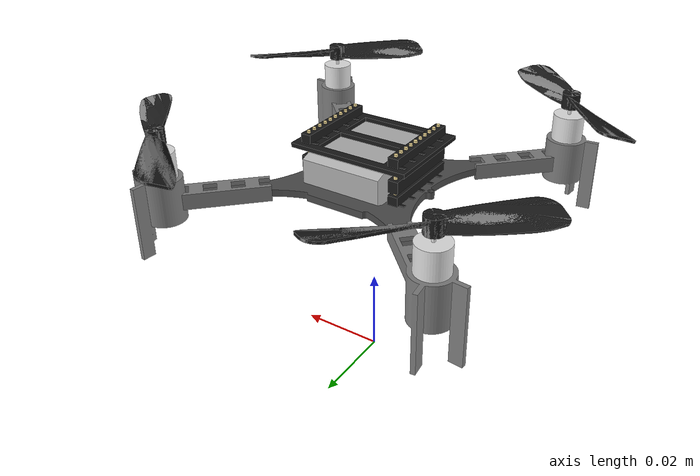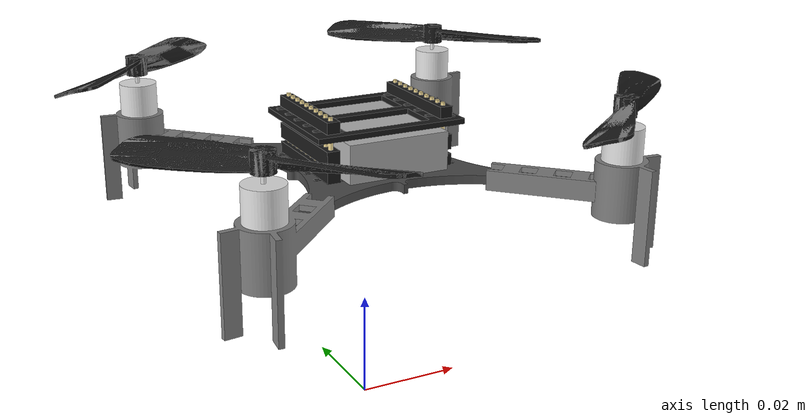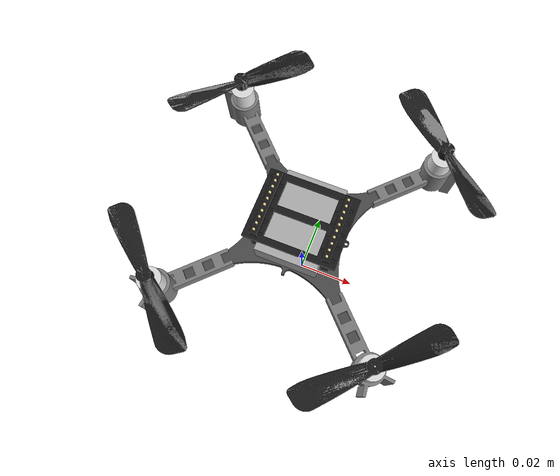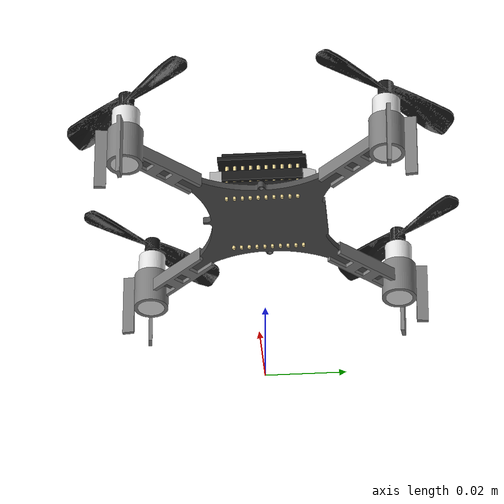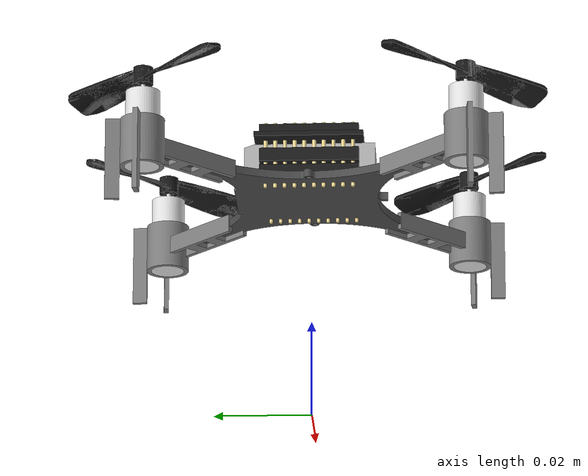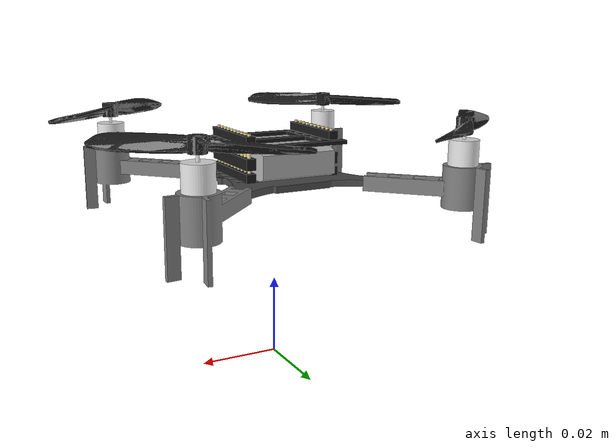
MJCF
<mujoco model="cf2x">
  <compiler inertiafromgeom="false" meshdir="assets" autolimits="true" />

  <asset>
    <material name="black" rgba="0.102 0.102 0.102 1"/>
    <material name="gray" rgba="0.3 0.3 0.3 1"/>
    <material name="light-gray" rgba="0.7 0.7 0.7 1"/>
    <material name="silver" rgba="0.898 0.898 0.898 1"/>
    <material name="white" rgba="1 1 1 0.3"/>
    <material name="gold" rgba="0.969 0.878 0.6 1"/>
    <!-- The LED materials are initially transparent and can be changed dynamically -->
    <material name="led_top" rgba="1.0 1.0 1.0 0.0"/>
    <material name="led_bot" rgba="1.0 1.0 1.0 0.0"/>

    <mesh name="pcb" file="cf2x/cf2x_pcb.stl" scale="0.001 0.001 0.001"/>
    <mesh name="motors" file="cf2x/cf2xL_motors.stl" scale="0.001 0.001 0.001"/>
    <mesh name="motor-holder" file="cf2x/cf2x_motor-holder.stl" scale="0.001 0.001 0.001"/>
    <mesh name="propL" file="cf2x/cf2xL_PropL.stl" scale="0.001 0.001 0.001"/>
    <mesh name="propR" file="cf2x/cf2xL_PropR.stl" scale="0.001 0.001 0.001"/>
    <mesh name="connectors" file="cf2x/cf2x_connectors.stl" scale="0.001 0.001 0.001"/>
    <mesh name="connector-pins" file="cf2x/cf2x_connector-pins.stl" scale="0.001 0.001 0.001"/>
    <mesh name="battery" file="cf2x/cf2x_battery.stl" scale="0.001 0.001 0.001"/>
    <mesh name="battery-holder" file="cf2x/cf2x_battery-holder.stl" scale="0.001 0.001 0.001"/>
    <mesh name="led-diffuser" file="cf21B/cf_led-diffuser.stl" scale="1e-3 1e-3 1e-3"/>
    <mesh name="cf2x_fused" file="cf2x/cf2xL_fused.stl" scale="0.001 0.001 0.001"/>
  </asset>

  <default>
    <default class="cf2x">
      <default class="visual">
        <geom group="2" type="mesh" contype="0" conaffinity="0" />
      </default>
      <default class="collision">
        <geom group="3" condim="1" />
      </default>
      <site group="5" />
    </default>
  </default>

  <worldbody>
    <body name="drone" pos="0 0 0.05" childclass="cf2x">
      <site name="CoM" />
      <inertial pos="0.0 0.0 0.0" mass="0.0328" diaginertia="2.3951e-5 2.3951e-5 3.2347e-5" />

      <!-- Meshes -->
      <geom mesh="pcb" material="gray" class="visual" />
      <geom mesh="motors" material="silver" class="visual" />
      <geom mesh="motor-holder" material="white" class="visual" />
      <geom mesh="connectors" material="black" class="visual" />
      <geom mesh="connector-pins" material="gold" class="visual" />
      <geom mesh="battery" material="light-gray" class="visual" />
      <geom mesh="battery-holder" material="black" class="visual" />
      <geom name="led_top" mesh="led-diffuser" material="led_top" class="visual" pos="0 0 0.008" euler="180 0 0"/>
      <geom name="led_bot" mesh="led-diffuser" material="led_bot" class="visual" pos="0 0 -0.003"/>

      <!-- Collision geometry is estimated based on the visual mesh. We use a sphere for maximum
       computational efficiency with larger swarms. Used by default-->
      <geom  name="col_sphere" type="sphere" size="0.07" pos="0 0 0.005" class="collision" contype="1" conaffinity="1" />
      <!-- For higher accuracy with lower performance, you can use a box. By default off. -->
      <geom  name="col_box" type="box" size="0.055 0.055 0.02" class="collision" rgba="0.5 0.5 0.5 0" contype="0" conaffinity="0" />

      <!-- Motors and Propellers -->
      <site name="motor0" pos="0.0325 -0.0325 0.0" />
      <site name="motor1" pos="-0.0325 -0.0325 0.0" />
      <site name="motor2" pos="-0.0325 0.0325 0.0" />
      <site name="motor3" pos="0.0325 0.0325 0.0" />
      <body name="prop0" pos="0.0325 -0.0325 0.012" euler="0 0 45">
        <geom mesh="propL" material="black" class="visual"/>
      </body>
      <body name="prop1" pos="-0.0325 -0.0325 0.012" euler="0 0 135">
        <geom mesh="propR" material="black" class="visual"/>
      </body>
      <body name="prop2" pos="-0.0325 0.0325 0.012" euler="0 0 225">
        <geom mesh="propL" material="black" class="visual"/>
      </body>
      <body name="prop3" pos="0.0325 0.0325 0.012" euler="0 0 315">
        <geom mesh="propR" material="black" class="visual"/>
      </body>

      <!-- Cameras -->
      <camera name="track_cam" pos="-1 0 .5" xyaxes="0 -1 0 1 0 2" mode="trackcom" />
      <camera name="fpv_cam" pos="0.03 0 0" euler="0 -90 -90" fovy="70" resolution="640 480" />
    </body>

    <!-- Drone version optimized by fusing the whole geometry into a single mesh -->
    <body name="drone_fused" pos="0 0 0.05" childclass="cf2x">
      <inertial pos="0.0 0.0 0.0" mass="0.0328" diaginertia="2.3951e-5 2.3951e-5 3.2347e-5" />
      <geom mesh="cf2x_fused" material="" class="visual" />
      <geom name="col_sphere_fused" type="sphere" size="0.07" pos="0 0 0.005" class="collision" contype="1" conaffinity="1" />
      <geom name="col_box_fused" type="box" size="0.055 0.055 0.02" class="collision" rgba="0.5 0.5 0.5 0" contype="0" conaffinity="0" />
    </body>
  </worldbody>

</mujoco>
